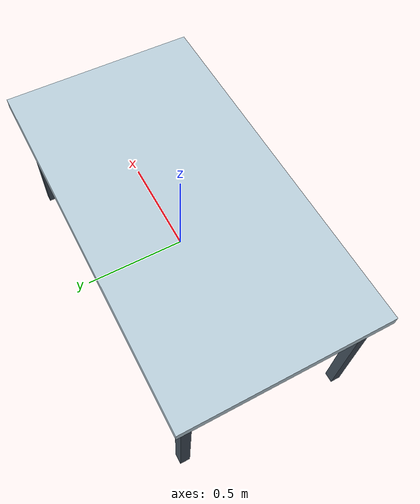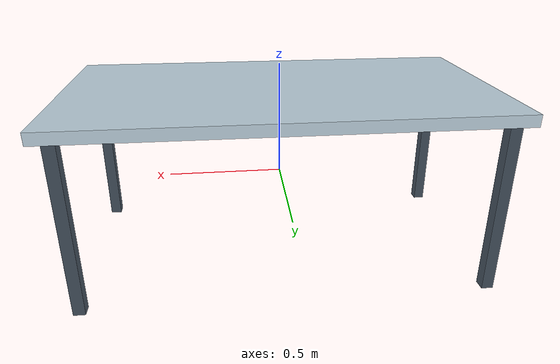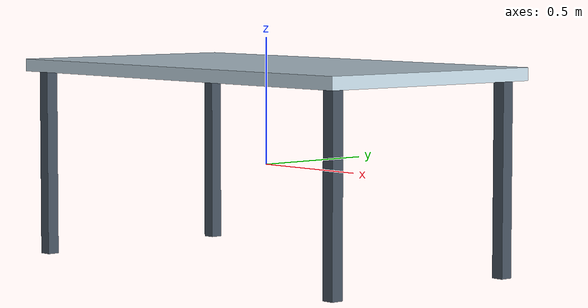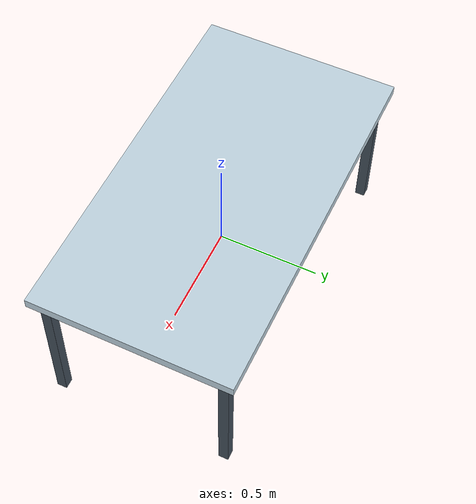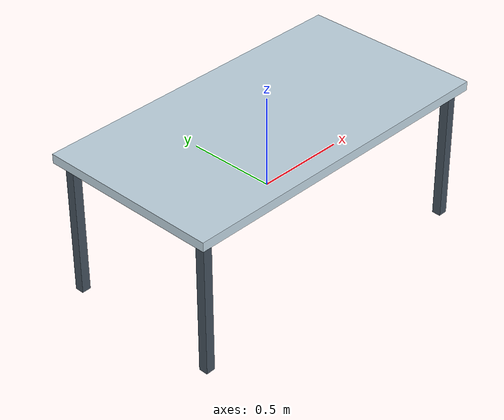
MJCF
<?xml version='1.0' encoding='utf-8'?>
<mujoco model="Process bench | static procedural reference">
  <visual>
    <global offwidth="1000" offheight="600" />
  </visual>
  <asset>
    <texture type="skybox" builtin="gradient" rgb1=".92 .95 .97" rgb2=".70 .78 .84" width="512" height="3072" />
  </asset>
  <worldbody>
    <geom type="box" size="0.925 0.5 0.025" pos="0 0 0.375" quat="1 0 0 0" rgba="0.75999999 0.839999974 0.889999986 1" contype="0" conaffinity="0" />
    <geom type="box" size="0.025 0.025 0.375" pos="-0.86 -0.435 -0.025" quat="1 0 0 0" rgba="0.25999999 0.310000002 0.360000014 1" contype="0" conaffinity="0" />
    <geom type="box" size="0.025 0.025 0.375" pos="-0.86 0.435 -0.025" quat="1 0 0 0" rgba="0.25999999 0.310000002 0.360000014 1" contype="0" conaffinity="0" />
    <geom type="box" size="0.025 0.025 0.375" pos="0.86 -0.435 -0.025" quat="1 0 0 0" rgba="0.25999999 0.310000002 0.360000014 1" contype="0" conaffinity="0" />
    <geom type="box" size="0.025 0.025 0.375" pos="0.86 0.435 -0.025" quat="1 0 0 0" rgba="0.25999999 0.310000002 0.360000014 1" contype="0" conaffinity="0" />
  </worldbody>
</mujoco>
